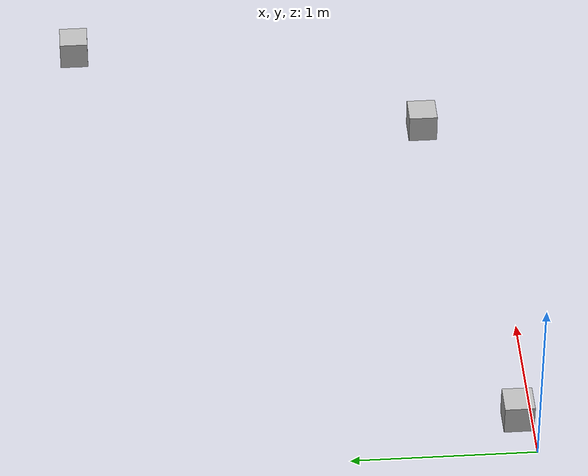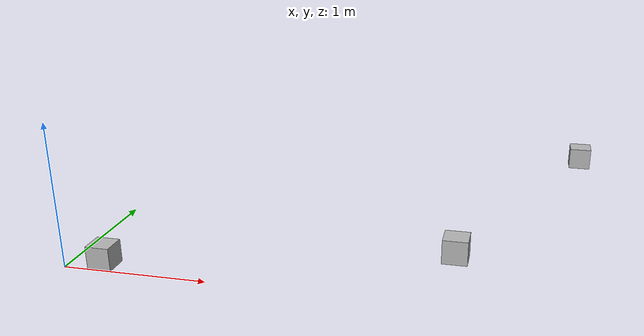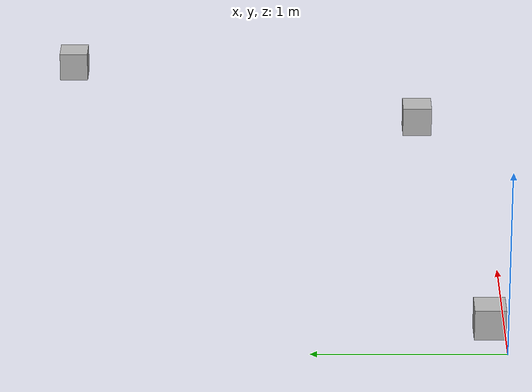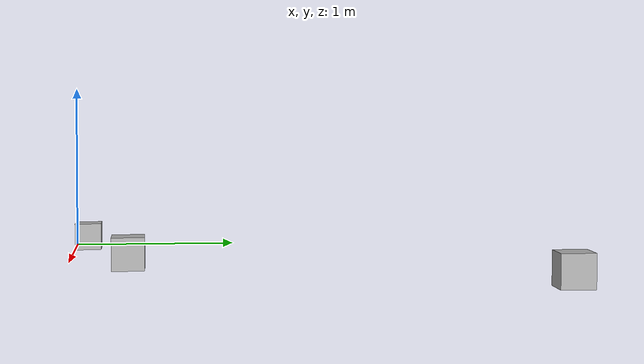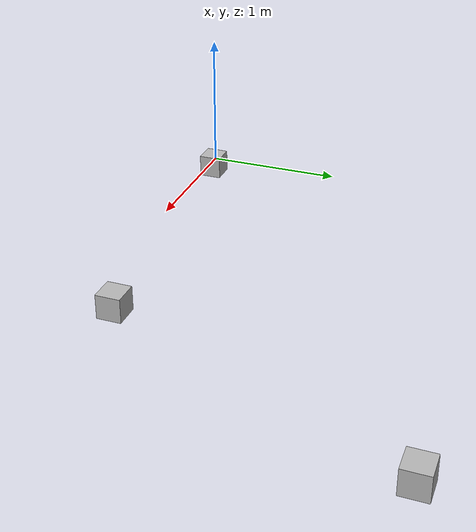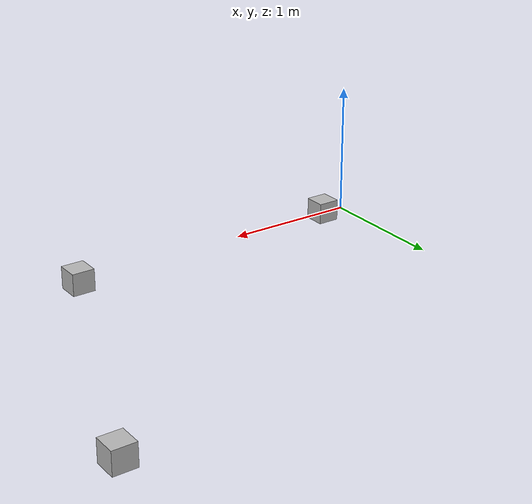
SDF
<?xml version='1.0'?>
<sdf version='1.7'>
  <model name='sheeps'>
    <link name='link'>
      <inertial>
        <mass>2</mass>
        <inertia>
          <ixx>0.0416667</ixx>
          <ixy>0</ixy>
          <ixz>0</ixz>
          <iyy>0.0566667</iyy>
          <iyz>0</iyz>
          <izz>0.0683333</izz>
        </inertia>
        <pose>0 0 0 0 -0 0</pose>
      </inertial>
      <self_collide>0</self_collide>
      <enable_wind>0</enable_wind>
      <kinematic>0</kinematic>
      <pose>0.166522 -0 0 0 -0 0</pose>
      <visual name='visual'>
        <pose>0 0 0 0 -0 0</pose>
        <geometry>
          <mesh>
            <uri>model://sheep/meshes/sheep.dae</uri>
            <scale>0.2 0.2 0.2</scale>
          </mesh>
        </geometry>
        <material>
          <shader type='pixel'/>
        </material>
        <transparency>0</transparency>
        <cast_shadows>1</cast_shadows>
      </visual>
      <collision name='collision'>
        <laser_retro>0</laser_retro>
        <max_contacts>10</max_contacts>
        <pose>0 0 0 0 -0 0</pose>
        <geometry>
          <box>
            <size>0.2 0.2 0.2</size>
          </box>
        </geometry>
        <surface>
          <friction>
            <ode>
              <mu>1</mu>
              <mu2>1</mu2>
              <fdir1>0 0 0</fdir1>
              <slip1>0</slip1>
              <slip2>0</slip2>
            </ode>
            <torsional>
              <coefficient>1</coefficient>
              <patch_radius>0</patch_radius>
              <surface_radius>0</surface_radius>
              <use_patch_radius>1</use_patch_radius>
              <ode>
                <slip>0</slip>
              </ode>
            </torsional>
          </friction>
          <bounce>
            <restitution_coefficient>0</restitution_coefficient>
            <threshold>1e+06</threshold>
          </bounce>
          <contact>
            <collide_without_contact>0</collide_without_contact>
            <collide_without_contact_bitmask>1</collide_without_contact_bitmask>
            <collide_bitmask>1</collide_bitmask>
            <ode>
              <soft_cfm>0</soft_cfm>
              <soft_erp>0.2</soft_erp>
              <kp>1e+07</kp>
              <kd>1</kd>
              <max_vel>0.1</max_vel>
              <min_depth>0.001</min_depth>
            </ode>
            <bullet>
              <split_impulse>1</split_impulse>
              <split_impulse_penetration_threshold>-0.01</split_impulse_penetration_threshold>
              <soft_cfm>0</soft_cfm>
              <soft_erp>0.2</soft_erp>
              <kp>1e+07</kp>
              <kd>1</kd>
            </bullet>
          </contact>
        </surface>
      </collision>
    </link>
    <model name='sheep'>
      <pose>2.47702 0.295503 0.15 0 -0 0</pose>
      <link name='link'>
        <inertial>
          <mass>2</mass>
          <inertia>
            <ixx>0.0416667</ixx>
            <ixy>0</ixy>
            <ixz>0</ixz>
            <iyy>0.0566667</iyy>
            <iyz>0</iyz>
            <izz>0.0683333</izz>
          </inertia>
        </inertial>
        <collision name='collision'>
          <geometry>
            <box>
              <size>0.2 0.2 0.2</size>
            </box>
          </geometry>
          <surface>
            <friction>
              <ode>
                <mu>1</mu>
                <mu2>1</mu2>
              </ode>
            </friction>
            <contact>
              <ode>
                <kp>1e+07</kp>
                <kd>1</kd>
                <min_depth>0.001</min_depth>
                <max_vel>0.1</max_vel>
              </ode>
            </contact>
          </surface>
        </collision>
        <visual name='visual'>
          <pose>0 0 0 0 -0 0</pose>
          <geometry>
            <mesh>
              <uri>model://sheep/meshes/sheep.dae</uri>
              <scale>0.2 0.2 0.2</scale>
            </mesh>
          </geometry>
        </visual>
      </link>
    </model>
    <model name='sheep_0'>
      <pose>3.30414 2.30176 0.15 0 -0 0</pose>
      <link name='link'>
        <inertial>
          <mass>2</mass>
          <inertia>
            <ixx>0.0416667</ixx>
            <ixy>0</ixy>
            <ixz>0</ixz>
            <iyy>0.0566667</iyy>
            <iyz>0</iyz>
            <izz>0.0683333</izz>
          </inertia>
        </inertial>
        <collision name='collision'>
          <geometry>
            <box>
              <size>0.2 0.2 0.2</size>
            </box>
          </geometry>
          <surface>
            <friction>
              <ode>
                <mu>1</mu>
                <mu2>1</mu2>
              </ode>
            </friction>
            <contact>
              <ode>
                <kp>1e+07</kp>
                <kd>1</kd>
                <min_depth>0.001</min_depth>
                <max_vel>0.1</max_vel>
              </ode>
            </contact>
          </surface>
        </collision>
        <visual name='visual'>
          <pose>0 0 0 0 -0 0</pose>
          <geometry>
            <mesh>
              <uri>model://sheep/meshes/sheep.dae</uri>
              <scale>0.2 0.2 0.2</scale>
            </mesh>
          </geometry>
        </visual>
      </link>
    </model>
    <static>0</static>
    <allow_auto_disable>1</allow_auto_disable>
  </model>
</sdf>
